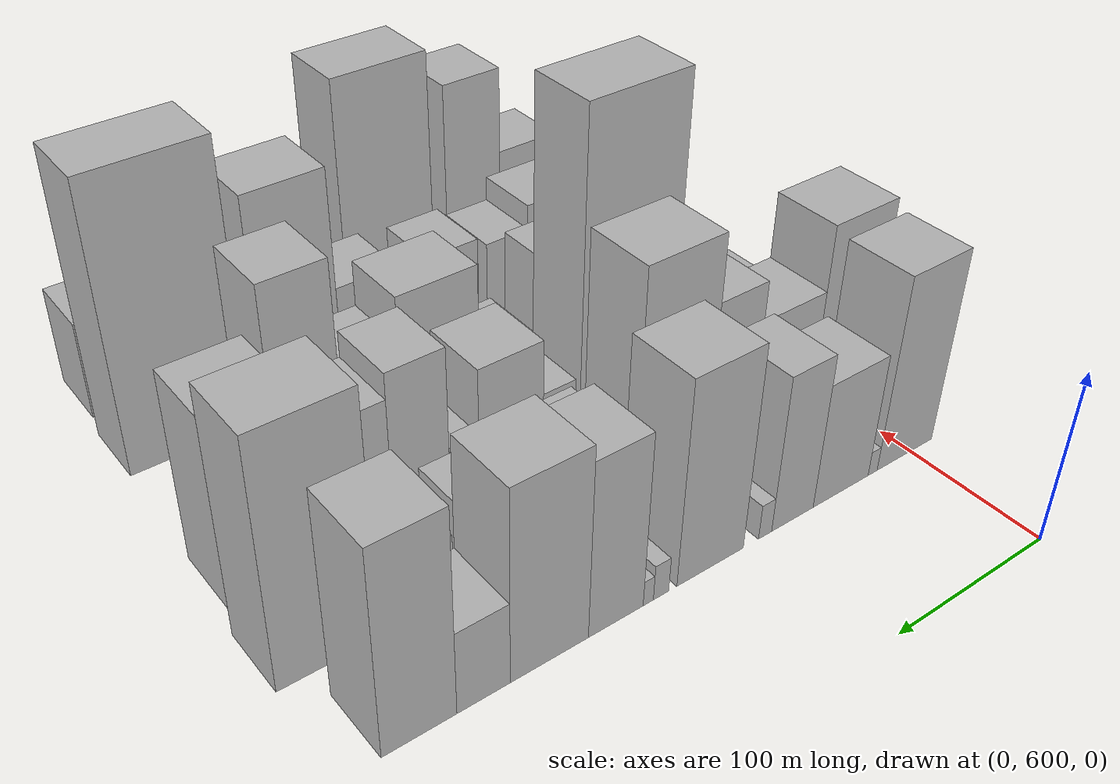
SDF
<sdf version="1.6">
 <world name="default">
  <model name="building_38">
   <static>1</static>
   <pose>100.0000 604.3563 0 0.000000 0.000000 0.000000</pose>
   <link name="link">
    <pose>0 0 58.50 0 0 0</pose>
    <collision name="collision"><geometry><box><size>40.0000 41.1685 117.0000</size></box></geometry></collision>
    <visual name="visual">
     <cast_shadows>0</cast_shadows>
     <geometry><box><size>40.0000 41.1685 117.0000</size></box></geometry>
     <material>
      <script>
       <uri>model://HANNAS_wall/materials/scripts</uri>
       <uri>model://HANNAS_wall/materials/textures</uri>
       <name>vrc/HANNAS_wall</name>
      </script>
     </material>
    </visual>
   </link>
  </model>
  <model name="building_39">
   <static>1</static>
   <pose>100.0000 628.2709 0 0.000000 0.000000 0.000000</pose>
   <link name="link">
    <pose>0 0 7.50 0 0 0</pose>
    <collision name="collision"><geometry><box><size>40.0000 6.6607 15.0000</size></box></geometry></collision>
    <visual name="visual">
     <cast_shadows>0</cast_shadows>
     <geometry><box><size>40.0000 6.6607 15.0000</size></box></geometry>
     <material>
      <script>
       <uri>model://HANNAS_wall/materials/scripts</uri>
       <uri>model://HANNAS_wall/materials/textures</uri>
       <name>vrc/HANNAS_wall</name>
      </script>
     </material>
    </visual>
   </link>
  </model>
  <model name="building_40">
   <static>1</static>
   <pose>100.0000 651.1680 0 0.000000 0.000000 0.000000</pose>
   <link name="link">
    <pose>0 0 37.50 0 0 0</pose>
    <collision name="collision"><geometry><box><size>40.0000 39.1335 75.0000</size></box></geometry></collision>
    <visual name="visual">
     <cast_shadows>0</cast_shadows>
     <geometry><box><size>40.0000 39.1335 75.0000</size></box></geometry>
     <material>
      <script>
       <uri>model://HANNAS_wall/materials/scripts</uri>
       <uri>model://HANNAS_wall/materials/textures</uri>
       <name>vrc/HANNAS_wall</name>
      </script>
     </material>
    </visual>
   </link>
  </model>
  <model name="building_41">
   <static>1</static>
   <pose>100.0000 684.8733 0 0.000000 0.000000 0.000000</pose>
   <link name="link">
    <pose>0 0 46.50 0 0 0</pose>
    <collision name="collision"><geometry><box><size>40.0000 28.2772 93.0000</size></box></geometry></collision>
    <visual name="visual">
     <cast_shadows>0</cast_shadows>
     <geometry><box><size>40.0000 28.2772 93.0000</size></box></geometry>
     <material>
      <script>
       <uri>model://HANNAS_wall/materials/scripts</uri>
       <uri>model://HANNAS_wall/materials/textures</uri>
       <name>vrc/HANNAS_wall</name>
      </script>
     </material>
    </visual>
   </link>
  </model>
  <model name="building_42">
   <static>1</static>
   <pose>100.0000 703.3284 0 0.000000 0.000000 0.000000</pose>
   <link name="link">
    <pose>0 0 10.50 0 0 0</pose>
    <collision name="collision"><geometry><box><size>40.0000 8.6330 21.0000</size></box></geometry></collision>
    <visual name="visual">
     <cast_shadows>0</cast_shadows>
     <geometry><box><size>40.0000 8.6330 21.0000</size></box></geometry>
     <material>
      <script>
       <uri>model://HANNAS_wall/materials/scripts</uri>
       <uri>model://HANNAS_wall/materials/textures</uri>
       <name>vrc/HANNAS_wall</name>
      </script>
     </material>
    </visual>
   </link>
  </model>
  <model name="building_43">
   <static>1</static>
   <pose>100.0000 738.5542 0 0.000000 0.000000 0.000000</pose>
   <link name="link">
    <pose>0 0 60.00 0 0 0</pose>
    <collision name="collision"><geometry><box><size>40.0000 41.8185 120.0000</size></box></geometry></collision>
    <visual name="visual">
     <cast_shadows>0</cast_shadows>
     <geometry><box><size>40.0000 41.8185 120.0000</size></box></geometry>
     <material>
      <script>
       <uri>model://HANNAS_wall/materials/scripts</uri>
       <uri>model://HANNAS_wall/materials/textures</uri>
       <name>vrc/HANNAS_wall</name>
      </script>
     </material>
    </visual>
   </link>
  </model>
  <model name="building_44">
   <static>1</static>
   <pose>100.0000 769.0754 0 0.000000 0.000000 0.000000</pose>
   <link name="link">
    <pose>0 0 10.50 0 0 0</pose>
    <collision name="collision"><geometry><box><size>40.0000 9.2239 21.0000</size></box></geometry></collision>
    <visual name="visual">
     <cast_shadows>0</cast_shadows>
     <geometry><box><size>40.0000 9.2239 21.0000</size></box></geometry>
     <material>
      <script>
       <uri>model://HANNAS_wall/materials/scripts</uri>
       <uri>model://HANNAS_wall/materials/textures</uri>
       <name>vrc/HANNAS_wall</name>
      </script>
     </material>
    </visual>
   </link>
  </model>
  <model name="building_45">
   <static>1</static>
   <pose>100.0000 776.7231 0 0.000000 0.000000 0.000000</pose>
   <link name="link">
    <pose>0 0 7.50 0 0 0</pose>
    <collision name="collision"><geometry><box><size>40.0000 6.0716 15.0000</size></box></geometry></collision>
    <visual name="visual">
     <cast_shadows>0</cast_shadows>
     <geometry><box><size>40.0000 6.0716 15.0000</size></box></geometry>
     <material>
      <script>
       <uri>model://HANNAS_wall/materials/scripts</uri>
       <uri>model://HANNAS_wall/materials/textures</uri>
       <name>vrc/HANNAS_wall</name>
      </script>
     </material>
    </visual>
   </link>
  </model>
  <model name="building_46">
   <static>1</static>
   <pose>100.0000 795.5923 0 0.000000 0.000000 0.000000</pose>
   <link name="link">
    <pose>0 0 51.00 0 0 0</pose>
    <collision name="collision"><geometry><box><size>40.0000 31.6668 102.0000</size></box></geometry></collision>
    <visual name="visual">
     <cast_shadows>0</cast_shadows>
     <geometry><box><size>40.0000 31.6668 102.0000</size></box></geometry>
     <material>
      <script>
       <uri>model://HANNAS_wall/materials/scripts</uri>
       <uri>model://HANNAS_wall/materials/textures</uri>
       <name>vrc/HANNAS_wall</name>
      </script>
     </material>
    </visual>
   </link>
  </model>
  <model name="building_47">
   <static>1</static>
   <pose>100.0000 832.7759 0 0.000000 0.000000 0.000000</pose>
   <link name="link">
    <pose>0 0 55.50 0 0 0</pose>
    <collision name="collision"><geometry><box><size>40.0000 42.7002 111.0000</size></box></geometry></collision>
    <visual name="visual">
     <cast_shadows>0</cast_shadows>
     <geometry><box><size>40.0000 42.7002 111.0000</size></box></geometry>
     <material>
      <script>
       <uri>model://HANNAS_wall/materials/scripts</uri>
       <uri>model://HANNAS_wall/materials/textures</uri>
       <name>vrc/HANNAS_wall</name>
      </script>
     </material>
    </visual>
   </link>
  </model>
  <model name="building_48">
   <static>1</static>
   <pose>100.0000 867.8961 0 0.000000 0.000000 0.000000</pose>
   <link name="link">
    <pose>0 0 24.00 0 0 0</pose>
    <collision name="collision"><geometry><box><size>40.0000 27.5403 48.0000</size></box></geometry></collision>
    <visual name="visual">
     <cast_shadows>0</cast_shadows>
     <geometry><box><size>40.0000 27.5403 48.0000</size></box></geometry>
     <material>
      <script>
       <uri>model://HANNAS_wall/materials/scripts</uri>
       <uri>model://HANNAS_wall/materials/textures</uri>
       <name>vrc/HANNAS_wall</name>
      </script>
     </material>
    </visual>
   </link>
  </model>
  <model name="building_49">
   <static>1</static>
   <pose>100.0000 900.2619 0 0.000000 0.000000 0.000000</pose>
   <link name="link">
    <pose>0 0 58.50 0 0 0</pose>
    <collision name="collision"><geometry><box><size>40.0000 37.1913 117.0000</size></box></geometry></collision>
    <visual name="visual">
     <cast_shadows>0</cast_shadows>
     <geometry><box><size>40.0000 37.1913 117.0000</size></box></geometry>
     <material>
      <script>
       <uri>model://HANNAS_wall/materials/scripts</uri>
       <uri>model://HANNAS_wall/materials/textures</uri>
       <name>vrc/HANNAS_wall</name>
      </script>
     </material>
    </visual>
   </link>
  </model>
  <model name="building_92">
   <static>1</static>
   <pose>155.0000 593.9766 0 0.000000 0.000000 0.000000</pose>
   <link name="link">
    <pose>0 0 57.00 0 0 0</pose>
    <collision name="collision"><geometry><box><size>40.0000 44.9442 114.0000</size></box></geometry></collision>
    <visual name="visual">
     <cast_shadows>0</cast_shadows>
     <geometry><box><size>40.0000 44.9442 114.0000</size></box></geometry>
     <material>
      <script>
       <uri>model://HANNAS_wall/materials/scripts</uri>
       <uri>model://HANNAS_wall/materials/textures</uri>
       <name>vrc/HANNAS_wall</name>
      </script>
     </material>
    </visual>
   </link>
  </model>
  <model name="building_93">
   <static>1</static>
   <pose>155.0000 638.2554 0 0.000000 0.000000 0.000000</pose>
   <link name="link">
    <pose>0 0 37.50 0 0 0</pose>
    <collision name="collision"><geometry><box><size>40.0000 43.6133 75.0000</size></box></geometry></collision>
    <visual name="visual">
     <cast_shadows>0</cast_shadows>
     <geometry><box><size>40.0000 43.6133 75.0000</size></box></geometry>
     <material>
      <script>
       <uri>model://HANNAS_wall/materials/scripts</uri>
       <uri>model://HANNAS_wall/materials/textures</uri>
       <name>vrc/HANNAS_wall</name>
      </script>
     </material>
    </visual>
   </link>
  </model>
  <model name="building_94">
   <static>1</static>
   <pose>155.0000 675.5193 0 0.000000 0.000000 0.000000</pose>
   <link name="link">
    <pose>0 0 49.50 0 0 0</pose>
    <collision name="collision"><geometry><box><size>40.0000 30.9146 99.0000</size></box></geometry></collision>
    <visual name="visual">
     <cast_shadows>0</cast_shadows>
     <geometry><box><size>40.0000 30.9146 99.0000</size></box></geometry>
     <material>
      <script>
       <uri>model://HANNAS_wall/materials/scripts</uri>
       <uri>model://HANNAS_wall/materials/textures</uri>
       <name>vrc/HANNAS_wall</name>
      </script>
     </material>
    </visual>
   </link>
  </model>
  <model name="building_95">
   <static>1</static>
   <pose>155.0000 714.7334 0 0.000000 0.000000 0.000000</pose>
   <link name="link">
    <pose>0 0 69.00 0 0 0</pose>
    <collision name="collision"><geometry><box><size>40.0000 47.5135 138.0000</size></box></geometry></collision>
    <visual name="visual">
     <cast_shadows>0</cast_shadows>
     <geometry><box><size>40.0000 47.5135 138.0000</size></box></geometry>
     <material>
      <script>
       <uri>model://HANNAS_wall/materials/scripts</uri>
       <uri>model://HANNAS_wall/materials/textures</uri>
       <name>vrc/HANNAS_wall</name>
      </script>
     </material>
    </visual>
   </link>
  </model>
  <model name="building_96">
   <static>1</static>
   <pose>155.0000 760.6409 0 0.000000 0.000000 0.000000</pose>
   <link name="link">
    <pose>0 0 25.50 0 0 0</pose>
    <collision name="collision"><geometry><box><size>40.0000 26.3016 51.0000</size></box></geometry></collision>
    <visual name="visual">
     <cast_shadows>0</cast_shadows>
     <geometry><box><size>40.0000 26.3016 51.0000</size></box></geometry>
     <material>
      <script>
       <uri>model://HANNAS_wall/materials/scripts</uri>
       <uri>model://HANNAS_wall/materials/textures</uri>
       <name>vrc/HANNAS_wall</name>
      </script>
     </material>
    </visual>
   </link>
  </model>
  <model name="building_97">
   <static>1</static>
   <pose>155.0000 784.4863 0 0.000000 0.000000 0.000000</pose>
   <link name="link">
    <pose>0 0 18.00 0 0 0</pose>
    <collision name="collision"><geometry><box><size>40.0000 21.3894 36.0000</size></box></geometry></collision>
    <visual name="visual">
     <cast_shadows>0</cast_shadows>
     <geometry><box><size>40.0000 21.3894 36.0000</size></box></geometry>
     <material>
      <script>
       <uri>model://HANNAS_wall/materials/scripts</uri>
       <uri>model://HANNAS_wall/materials/textures</uri>
       <name>vrc/HANNAS_wall</name>
      </script>
     </material>
    </visual>
   </link>
  </model>
  <model name="building_98">
   <static>1</static>
   <pose>155.0000 804.2698 0 0.000000 0.000000 0.000000</pose>
   <link name="link">
    <pose>0 0 16.50 0 0 0</pose>
    <collision name="collision"><geometry><box><size>40.0000 18.1776 33.0000</size></box></geometry></collision>
    <visual name="visual">
     <cast_shadows>0</cast_shadows>
     <geometry><box><size>40.0000 18.1776 33.0000</size></box></geometry>
     <material>
      <script>
       <uri>model://HANNAS_wall/materials/scripts</uri>
       <uri>model://HANNAS_wall/materials/textures</uri>
       <name>vrc/HANNAS_wall</name>
      </script>
     </material>
    </visual>
   </link>
  </model>
  <model name="building_99">
   <static>1</static>
   <pose>155.0000 824.8394 0 0.000000 0.000000 0.000000</pose>
   <link name="link">
    <pose>0 0 22.50 0 0 0</pose>
    <collision name="collision"><geometry><box><size>40.0000 22.9616 45.0000</size></box></geometry></collision>
    <visual name="visual">
     <cast_shadows>0</cast_shadows>
     <geometry><box><size>40.0000 22.9616 45.0000</size></box></geometry>
     <material>
      <script>
       <uri>model://HANNAS_wall/materials/scripts</uri>
       <uri>model://HANNAS_wall/materials/textures</uri>
       <name>vrc/HANNAS_wall</name>
      </script>
     </material>
    </visual>
   </link>
  </model>
  <model name="building_100">
   <static>1</static>
   <pose>155.0000 855.4230 0 0.000000 0.000000 0.000000</pose>
   <link name="link">
    <pose>0 0 19.50 0 0 0</pose>
    <collision name="collision"><geometry><box><size>40.0000 20.2055 39.0000</size></box></geometry></collision>
    <visual name="visual">
     <cast_shadows>0</cast_shadows>
     <geometry><box><size>40.0000 20.2055 39.0000</size></box></geometry>
     <material>
      <script>
       <uri>model://HANNAS_wall/materials/scripts</uri>
       <uri>model://HANNAS_wall/materials/textures</uri>
       <name>vrc/HANNAS_wall</name>
      </script>
     </material>
    </visual>
   </link>
  </model>
  <model name="building_101">
   <static>1</static>
   <pose>155.0000 875.5136 0 0.000000 0.000000 0.000000</pose>
   <link name="link">
    <pose>0 0 18.00 0 0 0</pose>
    <collision name="collision"><geometry><box><size>40.0000 19.9756 36.0000</size></box></geometry></collision>
    <visual name="visual">
     <cast_shadows>0</cast_shadows>
     <geometry><box><size>40.0000 19.9756 36.0000</size></box></geometry>
     <material>
      <script>
       <uri>model://HANNAS_wall/materials/scripts</uri>
       <uri>model://HANNAS_wall/materials/textures</uri>
       <name>vrc/HANNAS_wall</name>
      </script>
     </material>
    </visual>
   </link>
  </model>
  <model name="building_102">
   <static>1</static>
   <pose>155.0000 911.1218 0 0.000000 0.000000 0.000000</pose>
   <link name="link">
    <pose>0 0 70.50 0 0 0</pose>
    <collision name="collision"><geometry><box><size>40.0000 51.2408 141.0000</size></box></geometry></collision>
    <visual name="visual">
     <cast_shadows>0</cast_shadows>
     <geometry><box><size>40.0000 51.2408 141.0000</size></box></geometry>
     <material>
      <script>
       <uri>model://HANNAS_wall/materials/scripts</uri>
       <uri>model://HANNAS_wall/materials/textures</uri>
       <name>vrc/HANNAS_wall</name>
      </script>
     </material>
    </visual>
   </link>
  </model>
  <model name="building_149">
   <static>1</static>
   <pose>210.0000 601.3188 0 0.000000 0.000000 0.000000</pose>
   <link name="link">
    <pose>0 0 21.00 0 0 0</pose>
    <collision name="collision"><geometry><box><size>40.0000 21.8236 42.0000</size></box></geometry></collision>
    <visual name="visual">
     <cast_shadows>0</cast_shadows>
     <geometry><box><size>40.0000 21.8236 42.0000</size></box></geometry>
     <material>
      <script>
       <uri>model://HANNAS_wall/materials/scripts</uri>
       <uri>model://HANNAS_wall/materials/textures</uri>
       <name>vrc/HANNAS_wall</name>
      </script>
     </material>
    </visual>
   </link>
  </model>
  <model name="building_150">
   <static>1</static>
   <pose>210.0000 626.1233 0 0.000000 0.000000 0.000000</pose>
   <link name="link">
    <pose>0 0 24.00 0 0 0</pose>
    <collision name="collision"><geometry><box><size>40.0000 27.7855 48.0000</size></box></geometry></collision>
    <visual name="visual">
     <cast_shadows>0</cast_shadows>
     <geometry><box><size>40.0000 27.7855 48.0000</size></box></geometry>
     <material>
      <script>
       <uri>model://HANNAS_wall/materials/scripts</uri>
       <uri>model://HANNAS_wall/materials/textures</uri>
       <name>vrc/HANNAS_wall</name>
      </script>
     </material>
    </visual>
   </link>
  </model>
  <model name="building_151">
   <static>1</static>
   <pose>210.0000 648.8752 0 0.000000 0.000000 0.000000</pose>
   <link name="link">
    <pose>0 0 15.00 0 0 0</pose>
    <collision name="collision"><geometry><box><size>40.0000 17.7182 30.0000</size></box></geometry></collision>
    <visual name="visual">
     <cast_shadows>0</cast_shadows>
     <geometry><box><size>40.0000 17.7182 30.0000</size></box></geometry>
     <material>
      <script>
       <uri>model://HANNAS_wall/materials/scripts</uri>
       <uri>model://HANNAS_wall/materials/textures</uri>
       <name>vrc/HANNAS_wall</name>
      </script>
     </material>
    </visual>
   </link>
  </model>
  <model name="building_152">
   <static>1</static>
   <pose>210.0000 698.0011 0 0.000000 0.000000 0.000000</pose>
   <link name="link">
    <pose>0 0 96.00 0 0 0</pose>
    <collision name="collision"><geometry><box><size>40.0000 62.5337 192.0000</size></box></geometry></collision>
    <visual name="visual">
     <cast_shadows>0</cast_shadows>
     <geometry><box><size>40.0000 62.5337 192.0000</size></box></geometry>
     <material>
      <script>
       <uri>model://HANNAS_wall/materials/scripts</uri>
       <uri>model://HANNAS_wall/materials/textures</uri>
       <name>vrc/HANNAS_wall</name>
      </script>
     </material>
    </visual>
   </link>
  </model>
  <model name="building_153">
   <static>1</static>
   <pose>210.0000 742.5468 0 0.000000 0.000000 0.000000</pose>
   <link name="link">
    <pose>0 0 19.50 0 0 0</pose>
    <collision name="collision"><geometry><box><size>40.0000 20.5576 39.0000</size></box></geometry></collision>
    <visual name="visual">
     <cast_shadows>0</cast_shadows>
     <geometry><box><size>40.0000 20.5576 39.0000</size></box></geometry>
     <material>
      <script>
       <uri>model://HANNAS_wall/materials/scripts</uri>
       <uri>model://HANNAS_wall/materials/textures</uri>
       <name>vrc/HANNAS_wall</name>
      </script>
     </material>
    </visual>
   </link>
  </model>
  <model name="building_154">
   <static>1</static>
   <pose>210.0000 772.5065 0 0.000000 0.000000 0.000000</pose>
   <link name="link">
    <pose>0 0 36.00 0 0 0</pose>
    <collision name="collision"><geometry><box><size>40.0000 39.3617 72.0000</size></box></geometry></collision>
    <visual name="visual">
     <cast_shadows>0</cast_shadows>
     <geometry><box><size>40.0000 39.3617 72.0000</size></box></geometry>
     <material>
      <script>
       <uri>model://HANNAS_wall/materials/scripts</uri>
       <uri>model://HANNAS_wall/materials/textures</uri>
       <name>vrc/HANNAS_wall</name>
      </script>
     </material>
    </visual>
   </link>
  </model>
  <model name="building_155">
   <static>1</static>
   <pose>210.0000 800.9271 0 0.000000 0.000000 0.000000</pose>
   <link name="link">
    <pose>0 0 16.50 0 0 0</pose>
    <collision name="collision"><geometry><box><size>40.0000 17.4795 33.0000</size></box></geometry></collision>
    <visual name="visual">
     <cast_shadows>0</cast_shadows>
     <geometry><box><size>40.0000 17.4795 33.0000</size></box></geometry>
     <material>
      <script>
       <uri>model://HANNAS_wall/materials/scripts</uri>
       <uri>model://HANNAS_wall/materials/textures</uri>
       <name>vrc/HANNAS_wall</name>
      </script>
     </material>
    </visual>
   </link>
  </model>
  <model name="building_156">
   <static>1</static>
   <pose>210.0000 826.1184 0 0.000000 0.000000 0.000000</pose>
   <link name="link">
    <pose>0 0 46.50 0 0 0</pose>
    <collision name="collision"><geometry><box><size>40.0000 32.9031 93.0000</size></box></geometry></collision>
    <visual name="visual">
     <cast_shadows>0</cast_shadows>
     <geometry><box><size>40.0000 32.9031 93.0000</size></box></geometry>
     <material>
      <script>
       <uri>model://HANNAS_wall/materials/scripts</uri>
       <uri>model://HANNAS_wall/materials/textures</uri>
       <name>vrc/HANNAS_wall</name>
      </script>
     </material>
    </visual>
   </link>
  </model>
  <model name="building_157">
   <static>1</static>
   <pose>210.0000 862.2631 0 0.000000 0.000000 0.000000</pose>
   <link name="link">
    <pose>0 0 39.00 0 0 0</pose>
    <collision name="collision"><geometry><box><size>40.0000 39.3862 78.0000</size></box></geometry></collision>
    <visual name="visual">
     <cast_shadows>0</cast_shadows>
     <geometry><box><size>40.0000 39.3862 78.0000</size></box></geometry>
     <material>
      <script>
       <uri>model://HANNAS_wall/materials/scripts</uri>
       <uri>model://HANNAS_wall/materials/textures</uri>
       <name>vrc/HANNAS_wall</name>
      </script>
     </material>
    </visual>
   </link>
  </model>
  <model name="building_158">
   <static>1</static>
   <pose>210.0000 885.6894 0 0.000000 0.000000 0.000000</pose>
   <link name="link">
    <pose>0 0 7.50 0 0 0</pose>
    <collision name="collision"><geometry><box><size>40.0000 7.4665 15.0000</size></box></geometry></collision>
    <visual name="visual">
     <cast_shadows>0</cast_shadows>
     <geometry><box><size>40.0000 7.4665 15.0000</size></box></geometry>
     <material>
      <script>
       <uri>model://HANNAS_wall/materials/scripts</uri>
       <uri>model://HANNAS_wall/materials/textures</uri>
       <name>vrc/HANNAS_wall</name>
      </script>
     </material>
    </visual>
   </link>
  </model>
  <model name="building_159">
   <static>1</static>
   <pose>210.0000 910.2798 0 0.000000 0.000000 0.000000</pose>
   <link name="link">
    <pose>0 0 55.50 0 0 0</pose>
    <collision name="collision"><geometry><box><size>40.0000 41.7143 111.0000</size></box></geometry></collision>
    <visual name="visual">
     <cast_shadows>0</cast_shadows>
     <geometry><box><size>40.0000 41.7143 111.0000</size></box></geometry>
     <material>
      <script>
       <uri>model://HANNAS_wall/materials/scripts</uri>
       <uri>model://HANNAS_wall/materials/textures</uri>
       <name>vrc/HANNAS_wall</name>
      </script>
     </material>
    </visual>
   </link>
  </model>
  <model name="building_200">
   <static>1</static>
   <pose>265.0000 598.0662 0 0.000000 0.000000 0.000000</pose>
   <link name="link">
    <pose>0 0 19.50 0 0 0</pose>
    <collision name="collision"><geometry><box><size>40.0000 23.3550 39.0000</size></box></geometry></collision>
    <visual name="visual">
     <cast_shadows>0</cast_shadows>
     <geometry><box><size>40.0000 23.3550 39.0000</size></box></geometry>
     <material>
      <script>
       <uri>model://HANNAS_wall/materials/scripts</uri>
       <uri>model://HANNAS_wall/materials/textures</uri>
       <name>vrc/HANNAS_wall</name>
      </script>
     </material>
    </visual>
   </link>
  </model>
  <model name="building_201">
   <static>1</static>
   <pose>265.0000 622.3452 0 0.000000 0.000000 0.000000</pose>
   <link name="link">
    <pose>0 0 24.00 0 0 0</pose>
    <collision name="collision"><geometry><box><size>40.0000 25.2031 48.0000</size></box></geometry></collision>
    <visual name="visual">
     <cast_shadows>0</cast_shadows>
     <geometry><box><size>40.0000 25.2031 48.0000</size></box></geometry>
     <material>
      <script>
       <uri>model://HANNAS_wall/materials/scripts</uri>
       <uri>model://HANNAS_wall/materials/textures</uri>
       <name>vrc/HANNAS_wall</name>
      </script>
     </material>
    </visual>
   </link>
  </model>
  <model name="building_202">
   <static>1</static>
   <pose>265.0000 648.2931 0 0.000000 0.000000 0.000000</pose>
   <link name="link">
    <pose>0 0 25.50 0 0 0</pose>
    <collision name="collision"><geometry><box><size>40.0000 26.6926 51.0000</size></box></geometry></collision>
    <visual name="visual">
     <cast_shadows>0</cast_shadows>
     <geometry><box><size>40.0000 26.6926 51.0000</size></box></geometry>
     <material>
      <script>
       <uri>model://HANNAS_wall/materials/scripts</uri>
       <uri>model://HANNAS_wall/materials/textures</uri>
       <name>vrc/HANNAS_wall</name>
      </script>
     </material>
    </visual>
   </link>
  </model>
  <model name="building_203">
   <static>1</static>
   <pose>265.0000 689.4120 0 0.000000 0.000000 0.000000</pose>
   <link name="link">
    <pose>0 0 34.50 0 0 0</pose>
    <collision name="collision"><geometry><box><size>40.0000 35.5451 69.0000</size></box></geometry></collision>
    <visual name="visual">
     <cast_shadows>0</cast_shadows>
     <geometry><box><size>40.0000 35.5451 69.0000</size></box></geometry>
     <material>
      <script>
       <uri>model://HANNAS_wall/materials/scripts</uri>
       <uri>model://HANNAS_wall/materials/textures</uri>
       <name>vrc/HANNAS_wall</name>
      </script>
     </material>
    </visual>
   </link>
  </model>
  <model name="building_204">
   <static>1</static>
   <pose>265.0000 725.2321 0 0.000000 0.000000 0.000000</pose>
   <link name="link">
    <pose>0 0 15.00 0 0 0</pose>
    <collision name="collision"><geometry><box><size>40.0000 16.0952 30.0000</size></box></geometry></collision>
    <visual name="visual">
     <cast_shadows>0</cast_shadows>
     <geometry><box><size>40.0000 16.0952 30.0000</size></box></geometry>
     <material>
      <script>
       <uri>model://HANNAS_wall/materials/scripts</uri>
       <uri>model://HANNAS_wall/materials/textures</uri>
       <name>vrc/HANNAS_wall</name>
      </script>
     </material>
    </visual>
   </link>
  </model>
  <model name="building_205">
   <static>1</static>
   <pose>265.0000 741.7090 0 0.000000 0.000000 0.000000</pose>
   <link name="link">
    <pose>0 0 16.50 0 0 0</pose>
    <collision name="collision"><geometry><box><size>40.0000 16.8586 33.0000</size></box></geometry></collision>
    <visual name="visual">
     <cast_shadows>0</cast_shadows>
     <geometry><box><size>40.0000 16.8586 33.0000</size></box></geometry>
     <material>
      <script>
       <uri>model://HANNAS_wall/materials/scripts</uri>
       <uri>model://HANNAS_wall/materials/textures</uri>
       <name>vrc/HANNAS_wall</name>
      </script>
     </material>
    </visual>
   </link>
  </model>
  <model name="building_206">
   <static>1</static>
   <pose>265.0000 777.5826 0 0.000000 0.000000 0.000000</pose>
   <link name="link">
    <pose>0 0 43.50 0 0 0</pose>
    <collision name="collision"><geometry><box><size>40.0000 48.8886 87.0000</size></box></geometry></collision>
    <visual name="visual">
     <cast_shadows>0</cast_shadows>
     <geometry><box><size>40.0000 48.8886 87.0000</size></box></geometry>
     <material>
      <script>
       <uri>model://HANNAS_wall/materials/scripts</uri>
       <uri>model://HANNAS_wall/materials/textures</uri>
       <name>vrc/HANNAS_wall</name>
      </script>
     </material>
    </visual>
   </link>
  </model>
  <model name="building_207">
   <static>1</static>
   <pose>265.0000 819.0999 0 0.000000 0.000000 0.000000</pose>
   <link name="link">
    <pose>0 0 30.00 0 0 0</pose>
    <collision name="collision"><geometry><box><size>40.0000 34.1460 60.0000</size></box></geometry></collision>
    <visual name="visual">
     <cast_shadows>0</cast_shadows>
     <geometry><box><size>40.0000 34.1460 60.0000</size></box></geometry>
     <material>
      <script>
       <uri>model://HANNAS_wall/materials/scripts</uri>
       <uri>model://HANNAS_wall/materials/textures</uri>
       <name>vrc/HANNAS_wall</name>
      </script>
     </material>
    </visual>
   </link>
  </model>
  <model name="building_208">
   <static>1</static>
   <pose>265.0000 855.0002 0 0.000000 0.000000 0.000000</pose>
   <link name="link">
    <pose>0 0 61.50 0 0 0</pose>
    <collision name="collision"><geometry><box><size>40.0000 37.6546 123.0000</size></box></geometry></collision>
    <visual name="visual">
     <cast_shadows>0</cast_shadows>
     <geometry><box><size>40.0000 37.6546 123.0000</size></box></geometry>
     <material>
      <script>
       <uri>model://HANNAS_wall/materials/scripts</uri>
       <uri>model://HANNAS_wall/materials/textures</uri>
       <name>vrc/HANNAS_wall</name>
      </script>
     </material>
    </visual>
   </link>
  </model>
  <model name="building_209">
   <static>1</static>
   <pose>265.0000 890.9066 0 0.000000 0.000000 0.000000</pose>
   <link name="link">
    <pose>0 0 28.50 0 0 0</pose>
    <collision name="collision"><geometry><box><size>40.0000 34.1583 57.0000</size></box></geometry></collision>
    <visual name="visual">
     <cast_shadows>0</cast_shadows>
     <geometry><box><size>40.0000 34.1583 57.0000</size></box></geometry>
     <material>
      <script>
       <uri>model://HANNAS_wall/materials/scripts</uri>
       <uri>model://HANNAS_wall/materials/textures</uri>
       <name>vrc/HANNAS_wall</name>
      </script>
     </material>
    </visual>
   </link>
  </model>
  <model name="building_256">
   <static>1</static>
   <pose>320.0000 604.9855 0 0.000000 0.000000 0.000000</pose>
   <link name="link">
    <pose>0 0 13.50 0 0 0</pose>
    <collision name="collision"><geometry><box><size>40.0000 11.4264 27.0000</size></box></geometry></collision>
    <visual name="visual">
     <cast_shadows>0</cast_shadows>
     <geometry><box><size>40.0000 11.4264 27.0000</size></box></geometry>
     <material>
      <script>
       <uri>model://HANNAS_wall/materials/scripts</uri>
       <uri>model://HANNAS_wall/materials/textures</uri>
       <name>vrc/HANNAS_wall</name>
      </script>
     </material>
    </visual>
   </link>
  </model>
  <model name="building_257">
   <static>1</static>
   <pose>320.0000 624.0324 0 0.000000 0.000000 0.000000</pose>
   <link name="link">
    <pose>0 0 22.50 0 0 0</pose>
    <collision name="collision"><geometry><box><size>40.0000 26.6674 45.0000</size></box></geometry></collision>
    <visual name="visual">
     <cast_shadows>0</cast_shadows>
     <geometry><box><size>40.0000 26.6674 45.0000</size></box></geometry>
     <material>
      <script>
       <uri>model://HANNAS_wall/materials/scripts</uri>
       <uri>model://HANNAS_wall/materials/textures</uri>
       <name>vrc/HANNAS_wall</name>
      </script>
     </material>
    </visual>
   </link>
  </model>
  <model name="building_258">
   <static>1</static>
   <pose>320.0000 641.0299 0 0.000000 0.000000 0.000000</pose>
   <link name="link">
    <pose>0 0 9.00 0 0 0</pose>
    <collision name="collision"><geometry><box><size>40.0000 7.3275 18.0000</size></box></geometry></collision>
    <visual name="visual">
     <cast_shadows>0</cast_shadows>
     <geometry><box><size>40.0000 7.3275 18.0000</size></box></geometry>
     <material>
      <script>
       <uri>model://HANNAS_wall/materials/scripts</uri>
       <uri>model://HANNAS_wall/materials/textures</uri>
       <name>vrc/HANNAS_wall</name>
      </script>
     </material>
    </visual>
   </link>
  </model>
  <model name="building_259">
   <static>1</static>
   <pose>320.0000 662.5373 0 0.000000 0.000000 0.000000</pose>
   <link name="link">
    <pose>0 0 34.50 0 0 0</pose>
    <collision name="collision"><geometry><box><size>40.0000 35.6873 69.0000</size></box></geometry></collision>
    <visual name="visual">
     <cast_shadows>0</cast_shadows>
     <geometry><box><size>40.0000 35.6873 69.0000</size></box></geometry>
     <material>
      <script>
       <uri>model://HANNAS_wall/materials/scripts</uri>
       <uri>model://HANNAS_wall/materials/textures</uri>
       <name>vrc/HANNAS_wall</name>
      </script>
     </material>
    </visual>
   </link>
  </model>
  <model name="building_260">
   <static>1</static>
   <pose>320.0000 694.6220 0 0.000000 0.000000 0.000000</pose>
   <link name="link">
    <pose>0 0 27.00 0 0 0</pose>
    <collision name="collision"><geometry><box><size>40.0000 28.4822 54.0000</size></box></geometry></collision>
    <visual name="visual">
     <cast_shadows>0</cast_shadows>
     <geometry><box><size>40.0000 28.4822 54.0000</size></box></geometry>
     <material>
      <script>
       <uri>model://HANNAS_wall/materials/scripts</uri>
       <uri>model://HANNAS_wall/materials/textures</uri>
       <name>vrc/HANNAS_wall</name>
      </script>
     </material>
    </visual>
   </link>
  </model>
  <model name="building_261">
   <static>1</static>
   <pose>320.0000 731.6997 0 0.000000 0.000000 0.000000</pose>
   <link name="link">
    <pose>0 0 30.00 0 0 0</pose>
    <collision name="collision"><geometry><box><size>40.0000 33.6733 60.0000</size></box></geometry></collision>
    <visual name="visual">
     <cast_shadows>0</cast_shadows>
     <geometry><box><size>40.0000 33.6733 60.0000</size></box></geometry>
     <material>
      <script>
       <uri>model://HANNAS_wall/materials/scripts</uri>
       <uri>model://HANNAS_wall/materials/textures</uri>
       <name>vrc/HANNAS_wall</name>
      </script>
     </material>
    </visual>
   </link>
  </model>
  <model name="building_262">
   <static>1</static>
   <pose>320.0000 757.8228 0 0.000000 0.000000 0.000000</pose>
   <link name="link">
    <pose>0 0 16.50 0 0 0</pose>
    <collision name="collision"><geometry><box><size>40.0000 18.5729 33.0000</size></box></geometry></collision>
    <visual name="visual">
     <cast_shadows>0</cast_shadows>
     <geometry><box><size>40.0000 18.5729 33.0000</size></box></geometry>
     <material>
      <script>
       <uri>model://HANNAS_wall/materials/scripts</uri>
       <uri>model://HANNAS_wall/materials/textures</uri>
       <name>vrc/HANNAS_wall</name>
      </script>
     </material>
    </visual>
   </link>
  </model>
  <model name="building_263">
   <static>1</static>
   <pose>320.0000 785.8464 0 0.000000 0.000000 0.000000</pose>
   <link name="link">
    <pose>0 0 31.50 0 0 0</pose>
    <collision name="collision"><geometry><box><size>40.0000 37.4743 63.0000</size></box></geometry></collision>
    <visual name="visual">
     <cast_shadows>0</cast_shadows>
     <geometry><box><size>40.0000 37.4743 63.0000</size></box></geometry>
     <material>
      <script>
       <uri>model://HANNAS_wall/materials/scripts</uri>
       <uri>model://HANNAS_wall/materials/textures</uri>
       <name>vrc/HANNAS_wall</name>
      </script>
     </material>
    </visual>
   </link>
  </model>
  <model name="building_264">
   <static>1</static>
   <pose>320.0000 828.1512 0 0.000000 0.000000 0.000000</pose>
   <link name="link">
    <pose>0 0 67.50 0 0 0</pose>
    <collision name="collision"><geometry><box><size>40.0000 47.1353 135.0000</size></box></geometry></collision>
    <visual name="visual">
     <cast_shadows>0</cast_shadows>
     <geometry><box><size>40.0000 47.1353 135.0000</size></box></geometry>
     <material>
      <script>
       <uri>model://HANNAS_wall/materials/scripts</uri>
       <uri>model://HANNAS_wall/materials/textures</uri>
       <name>vrc/HANNAS_wall</name>
      </script>
     </material>
    </visual>
   </link>
  </model>
  <model name="building_265">
   <static>1</static>
   <pose>320.0000 894.7632 0 0.000000 0.000000 0.000000</pose>
   <link name="link">
    <pose>0 0 85.50 0 0 0</pose>
    <collision name="collision"><geometry><box><size>40.0000 68.0886 171.0000</size></box></geometry></collision>
    <visual name="visual">
     <cast_shadows>0</cast_shadows>
     <geometry><box><size>40.0000 68.0886 171.0000</size></box></geometry>
     <material>
      <script>
       <uri>model://HANNAS_wall/materials/scripts</uri>
       <uri>model://HANNAS_wall/materials/textures</uri>
       <name>vrc/HANNAS_wall</name>
      </script>
     </material>
    </visual>
   </link>
  </model>
  <model name="building_309">
   <static>1</static>
   <pose>375.0000 611.0550 0 0.000000 0.000000 0.000000</pose>
   <link name="link">
    <pose>0 0 15.00 0 0 0</pose>
    <collision name="collision"><geometry><box><size>40.0000 16.7941 30.0000</size></box></geometry></collision>
    <visual name="visual">
     <cast_shadows>0</cast_shadows>
     <geometry><box><size>40.0000 16.7941 30.0000</size></box></geometry>
     <material>
      <script>
       <uri>model://HANNAS_wall/materials/scripts</uri>
       <uri>model://HANNAS_wall/materials/textures</uri>
       <name>vrc/HANNAS_wall</name>
      </script>
     </material>
    </visual>
   </link>
  </model>
  <model name="building_310">
   <static>1</static>
   <pose>375.0000 639.6815 0 0.000000 0.000000 0.000000</pose>
   <link name="link">
    <pose>0 0 36.00 0 0 0</pose>
    <collision name="collision"><geometry><box><size>40.0000 40.4588 72.0000</size></box></geometry></collision>
    <visual name="visual">
     <cast_shadows>0</cast_shadows>
     <geometry><box><size>40.0000 40.4588 72.0000</size></box></geometry>
     <material>
      <script>
       <uri>model://HANNAS_wall/materials/scripts</uri>
       <uri>model://HANNAS_wall/materials/textures</uri>
       <name>vrc/HANNAS_wall</name>
      </script>
     </material>
    </visual>
   </link>
  </model>
  <model name="building_311">
   <static>1</static>
   <pose>375.0000 679.2113 0 0.000000 0.000000 0.000000</pose>
   <link name="link">
    <pose>0 0 63.00 0 0 0</pose>
    <collision name="collision"><geometry><box><size>40.0000 38.6008 126.0000</size></box></geometry></collision>
    <visual name="visual">
     <cast_shadows>0</cast_shadows>
     <geometry><box><size>40.0000 38.6008 126.0000</size></box></geometry>
     <material>
      <script>
       <uri>model://HANNAS_wall/materials/scripts</uri>
       <uri>model://HANNAS_wall/materials/textures</uri>
       <name>vrc/HANNAS_wall</name>
      </script>
     </material>
    </visual>
   </link>
  </model>
  <model name="building_312">
   <static>1</static>
   <pose>375.0000 738.5047 0 0.000000 0.000000 0.000000</pose>
   <link name="link">
    <pose>0 0 75.00 0 0 0</pose>
    <collision name="collision"><geometry><box><size>40.0000 59.9862 150.0000</size></box></geometry></collision>
    <visual name="visual">
     <cast_shadows>0</cast_shadows>
     <geometry><box><size>40.0000 59.9862 150.0000</size></box></geometry>
     <material>
      <script>
       <uri>model://HANNAS_wall/materials/scripts</uri>
       <uri>model://HANNAS_wall/materials/textures</uri>
       <name>vrc/HANNAS_wall</name>
      </script>
     </material>
    </visual>
   </link>
  </model>
  <model name="building_313">
   <static>1</static>
   <pose>375.0000 780.1346 0 0.000000 0.000000 0.000000</pose>
   <link name="link">
    <pose>0 0 21.00 0 0 0</pose>
    <collision name="collision"><geometry><box><size>40.0000 23.2735 42.0000</size></box></geometry></collision>
    <visual name="visual">
     <cast_shadows>0</cast_shadows>
     <geometry><box><size>40.0000 23.2735 42.0000</size></box></geometry>
     <material>
      <script>
       <uri>model://HANNAS_wall/materials/scripts</uri>
       <uri>model://HANNAS_wall/materials/textures</uri>
       <name>vrc/HANNAS_wall</name>
      </script>
     </material>
    </visual>
   </link>
  </model>
  <model name="building_314">
   <static>1</static>
   <pose>375.0000 796.9879 0 0.000000 0.000000 0.000000</pose>
   <link name="link">
    <pose>0 0 10.50 0 0 0</pose>
    <collision name="collision"><geometry><box><size>40.0000 10.4333 21.0000</size></box></geometry></collision>
    <visual name="visual">
     <cast_shadows>0</cast_shadows>
     <geometry><box><size>40.0000 10.4333 21.0000</size></box></geometry>
     <material>
      <script>
       <uri>model://HANNAS_wall/materials/scripts</uri>
       <uri>model://HANNAS_wall/materials/textures</uri>
       <name>vrc/HANNAS_wall</name>
      </script>
     </material>
    </visual>
   </link>
  </model>
  <model name="building_315">
   <static>1</static>
   <pose>375.0000 819.7241 0 0.000000 0.000000 0.000000</pose>
   <link name="link">
    <pose>0 0 34.50 0 0 0</pose>
    <collision name="collision"><geometry><box><size>40.0000 35.0391 69.0000</size></box></geometry></collision>
    <visual name="visual">
     <cast_shadows>0</cast_shadows>
     <geometry><box><size>40.0000 35.0391 69.0000</size></box></geometry>
     <material>
      <script>
       <uri>model://HANNAS_wall/materials/scripts</uri>
       <uri>model://HANNAS_wall/materials/textures</uri>
       <name>vrc/HANNAS_wall</name>
      </script>
     </material>
    </visual>
   </link>
  </model>
  <model name="building_316">
   <static>1</static>
   <pose>375.0000 859.7355 0 0.000000 0.000000 0.000000</pose>
   <link name="link">
    <pose>0 0 37.50 0 0 0</pose>
    <collision name="collision"><geometry><box><size>40.0000 44.9836 75.0000</size></box></geometry></collision>
    <visual name="visual">
     <cast_shadows>0</cast_shadows>
     <geometry><box><size>40.0000 44.9836 75.0000</size></box></geometry>
     <material>
      <script>
       <uri>model://HANNAS_wall/materials/scripts</uri>
       <uri>model://HANNAS_wall/materials/textures</uri>
       <name>vrc/HANNAS_wall</name>
      </script>
     </material>
    </visual>
   </link>
  </model>
  <model name="building_317">
   <static>1</static>
   <pose>375.0000 886.0742 0 0.000000 0.000000 0.000000</pose>
   <link name="link">
    <pose>0 0 9.00 0 0 0</pose>
    <collision name="collision"><geometry><box><size>40.0000 7.6938 18.0000</size></box></geometry></collision>
    <visual name="visual">
     <cast_shadows>0</cast_shadows>
     <geometry><box><size>40.0000 7.6938 18.0000</size></box></geometry>
     <material>
      <script>
       <uri>model://HANNAS_wall/materials/scripts</uri>
       <uri>model://HANNAS_wall/materials/textures</uri>
       <name>vrc/HANNAS_wall</name>
      </script>
     </material>
    </visual>
   </link>
  </model>
  <model name="building_318">
   <static>1</static>
   <pose>375.0000 907.6923 0 0.000000 0.000000 0.000000</pose>
   <link name="link">
    <pose>0 0 30.00 0 0 0</pose>
    <collision name="collision"><geometry><box><size>40.0000 35.5424 60.0000</size></box></geometry></collision>
    <visual name="visual">
     <cast_shadows>0</cast_shadows>
     <geometry><box><size>40.0000 35.5424 60.0000</size></box></geometry>
     <material>
      <script>
       <uri>model://HANNAS_wall/materials/scripts</uri>
       <uri>model://HANNAS_wall/materials/textures</uri>
       <name>vrc/HANNAS_wall</name>
      </script>
     </material>
    </visual>
   </link>
  </model>
 </world>
</sdf>
